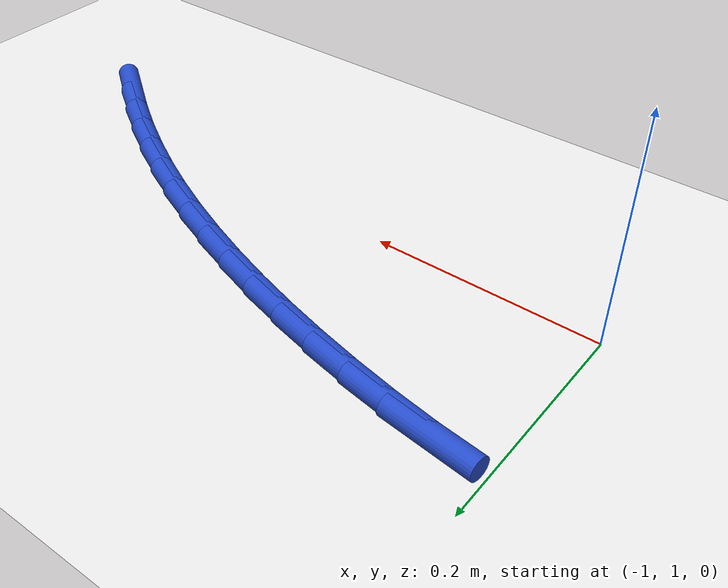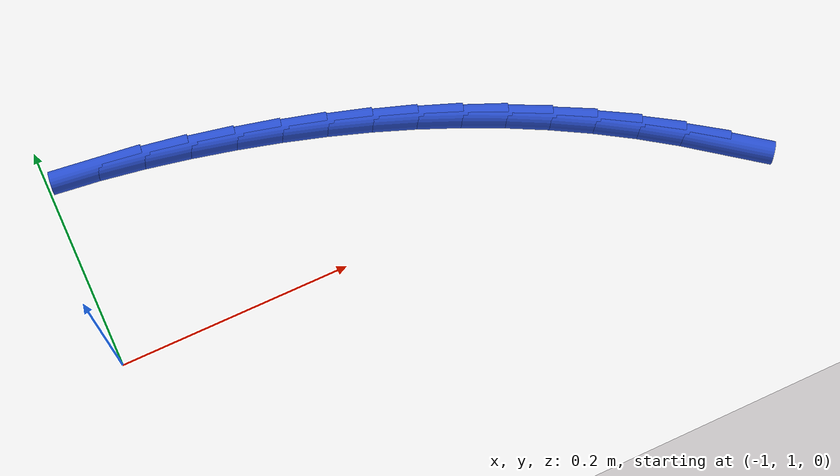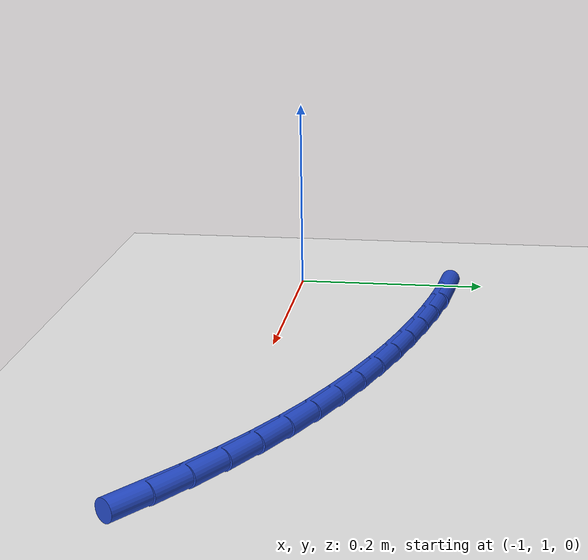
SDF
<sdf version="1.6">
 <world name="default">
  <model name="ground_plane">
   <static>1</static>
   <link name="link">
    <collision name="collision">
     <geometry><plane><normal>0 0 1</normal><size>100 100</size></plane></geometry>
     <surface><friction><ode><mu>100</mu><mu2>50</mu2></ode></friction></surface>
    </collision>
    <visual name="visual">
     <cast_shadows>0</cast_shadows>
     <geometry><plane><normal>0 0 1</normal><size>100 100</size></plane></geometry>
     <material>
      <script><uri>file://media/materials/scripts/gazebo.material</uri><name>Gazebo/WhiteGlow</name></script>
     </material>
    </visual>
   </link>
  </model>
  <model name="line">
   <link name="link_29">
    <pose>-0.46629692357888675 0.9622649805552564 0.01 0 1.57 -0.644617300203668</pose>
    <collision name="collision">
     <geometry><cylinder><radius>0.01</radius><length>0.08</length></cylinder></geometry>
    </collision>
    <visual name="visual">
     <material>
      <script><name>Gazebo/Blue</name><uri>file://media/materials/scripts/gazebo.material</uri></script>
     </material>
     <geometry><cylinder><radius>0.01</radius><length>0.08</length></cylinder></geometry>
    </visual>
   </link>
   <link name="link_30">
    <pose>-0.4963796583204193 0.9848795413572198 0.01 0 1.57 -0.6018433490432572</pose>
    <collision name="collision">
     <geometry><cylinder><radius>0.01</radius><length>0.08</length></cylinder></geometry>
    </collision>
    <visual name="visual">
     <material>
      <script><name>Gazebo/Blue</name><uri>file://media/materials/scripts/gazebo.material</uri></script>
     </material>
     <geometry><cylinder><radius>0.01</radius><length>0.08</length></cylinder></geometry>
    </visual>
   </link>
   <link name="link_31">
    <pose>-0.5273025149291422 1.00611879237708 0.01 0 1.57 -0.5585616730761743</pose>
    <collision name="collision">
     <geometry><cylinder><radius>0.01</radius><length>0.08</length></cylinder></geometry>
    </collision>
    <visual name="visual">
     <material>
      <script><name>Gazebo/Blue</name><uri>file://media/materials/scripts/gazebo.material</uri></script>
     </material>
     <geometry><cylinder><radius>0.01</radius><length>0.08</length></cylinder></geometry>
    </visual>
   </link>
   <link name="link_32">
    <pose>-0.5590470523618666 1.025957466603241 0.01 0 1.57 -0.5162318859606077</pose>
    <collision name="collision">
     <geometry><cylinder><radius>0.01</radius><length>0.08</length></cylinder></geometry>
    </collision>
    <visual name="visual">
     <material>
      <script><name>Gazebo/Blue</name><uri>file://media/materials/scripts/gazebo.material</uri></script>
     </material>
     <geometry><cylinder><radius>0.01</radius><length>0.08</length></cylinder></geometry>
    </visual>
   </link>
   <link name="link_33">
    <pose>-0.5915928210370628 1.0444294416611333 0.01 0 1.57 -0.4750725879860018</pose>
    <collision name="collision">
     <geometry><cylinder><radius>0.01</radius><length>0.08</length></cylinder></geometry>
    </collision>
    <visual name="visual">
     <material>
      <script><name>Gazebo/Blue</name><uri>file://media/materials/scripts/gazebo.material</uri></script>
     </material>
     <geometry><cylinder><radius>0.01</radius><length>0.08</length></cylinder></geometry>
    </visual>
   </link>
   <link name="link_34">
    <pose>-0.6249192772184453 1.0615713677141614 0.01 0 1.57 -0.4352156582199583</pose>
    <collision name="collision">
     <geometry><cylinder><radius>0.01</radius><length>0.08</length></cylinder></geometry>
    </collision>
    <visual name="visual">
     <material>
      <script><name>Gazebo/Blue</name><uri>file://media/materials/scripts/gazebo.material</uri></script>
     </material>
     <geometry><cylinder><radius>0.01</radius><length>0.08</length></cylinder></geometry>
    </visual>
   </link>
   <link name="link_35">
    <pose>-0.65900587716973 1.0774198949257305 0.01 0 1.57 -0.39676788484185255</pose>
    <collision name="collision">
     <geometry><cylinder><radius>0.01</radius><length>0.08</length></cylinder></geometry>
    </collision>
    <visual name="visual">
     <material>
      <script><name>Gazebo/Blue</name><uri>file://media/materials/scripts/gazebo.material</uri></script>
     </material>
     <geometry><cylinder><radius>0.01</radius><length>0.08</length></cylinder></geometry>
    </visual>
   </link>
   <link name="link_36">
    <pose>-0.6938320771546317 1.0920116734592458 0.01 0 1.57 -0.3598113329010088</pose>
    <collision name="collision">
     <geometry><cylinder><radius>0.01</radius><length>0.08</length></cylinder></geometry>
    </collision>
    <visual name="visual">
     <material>
      <script><name>Gazebo/Blue</name><uri>file://media/materials/scripts/gazebo.material</uri></script>
     </material>
     <geometry><cylinder><radius>0.01</radius><length>0.08</length></cylinder></geometry>
    </visual>
   </link>
   <link name="link_37">
    <pose>-0.7293773334368651 1.1053833534781108 0.01 0 1.57 -0.3244045953468325</pose>
    <collision name="collision">
     <geometry><cylinder><radius>0.01</radius><length>0.08</length></cylinder></geometry>
    </collision>
    <visual name="visual">
     <material>
      <script><name>Gazebo/Blue</name><uri>file://media/materials/scripts/gazebo.material</uri></script>
     </material>
     <geometry><cylinder><radius>0.01</radius><length>0.08</length></cylinder></geometry>
    </visual>
   </link>
   <link name="link_38">
    <pose>-0.7656211022801452 1.1175715851457315 0.01 0 1.57 -0.2905847045669322</pose>
    <collision name="collision">
     <geometry><cylinder><radius>0.01</radius><length>0.08</length></cylinder></geometry>
    </collision>
    <visual name="visual">
     <material>
      <script><name>Gazebo/Blue</name><uri>file://media/materials/scripts/gazebo.material</uri></script>
     </material>
     <geometry><cylinder><radius>0.01</radius><length>0.08</length></cylinder></geometry>
    </visual>
   </link>
   <link name="link_39">
    <pose>-0.8025428399481878 1.1286130186255126 0.01 0 1.57 -0.2583694801472251</pose>
    <collision name="collision">
     <geometry><cylinder><radius>0.01</radius><length>0.08</length></cylinder></geometry>
    </collision>
    <visual name="visual">
     <material>
      <script><name>Gazebo/Blue</name><uri>file://media/materials/scripts/gazebo.material</uri></script>
     </material>
     <geometry><cylinder><radius>0.01</radius><length>0.08</length></cylinder></geometry>
    </visual>
   </link>
   <link name="link_40">
    <pose>-0.8401220027047072 1.138544304080858 0.01 0 1.57 -0.22775881668565162</pose>
    <collision name="collision">
     <geometry><cylinder><radius>0.01</radius><length>0.08</length></cylinder></geometry>
    </collision>
    <visual name="visual">
     <material>
      <script><name>Gazebo/Blue</name><uri>file://media/materials/scripts/gazebo.material</uri></script>
     </material>
     <geometry><cylinder><radius>0.01</radius><length>0.08</length></cylinder></geometry>
    </visual>
   </link>
   <link name="link_41">
    <pose>-0.8783380072982557 1.147402030504463 0.01 0 1.57 -0.19698736914476042</pose>
    <collision name="collision">
     <geometry><cylinder><radius>0.01</radius><length>0.08</length></cylinder></geometry>
    </collision>
    <visual name="visual">
     <material>
      <script><name>Gazebo/Blue</name><uri>file://media/materials/scripts/gazebo.material</uri></script>
     </material>
     <geometry><cylinder><radius>0.01</radius><length>0.08</length></cylinder></geometry>
    </visual>
   </link>
   <link name="link_42">
    <pose>-0.91711777531145 1.1551415227275803 0.01 0 1.57 -0.16056854131868153</pose>
    <collision name="collision">
     <geometry><cylinder><radius>0.01</radius><length>0.08</length></cylinder></geometry>
    </collision>
    <visual name="visual">
     <material>
      <script><name>Gazebo/Blue</name><uri>file://media/materials/scripts/gazebo.material</uri></script>
     </material>
     <geometry><cylinder><radius>0.01</radius><length>0.08</length></cylinder></geometry>
    </visual>
   </link>
   <link name="link_43">
    <pose>-0.9562322274633748 1.1614766113575048 0.01 0 1.57 -0.11683518389842502</pose>
    <collision name="collision">
     <geometry><cylinder><radius>0.01</radius><length>0.08</length></cylinder></geometry>
    </collision>
    <visual name="visual">
     <material>
      <script><name>Gazebo/Blue</name><uri>file://media/materials/scripts/gazebo.material</uri></script>
     </material>
     <geometry><cylinder><radius>0.01</radius><length>0.08</length></cylinder></geometry>
    </visual>
   </link>
  </model>
 </world>
</sdf>
